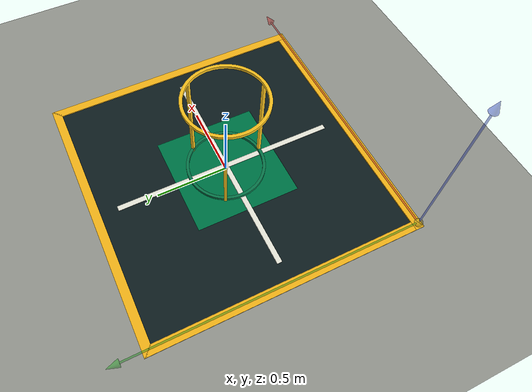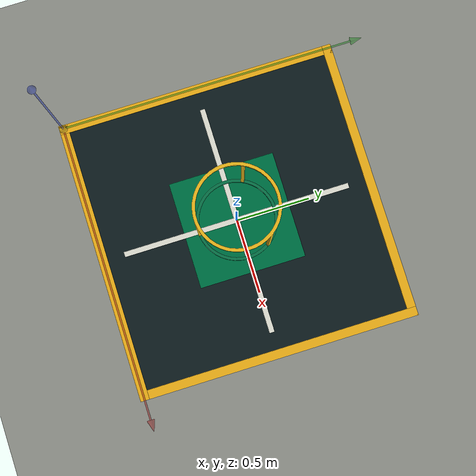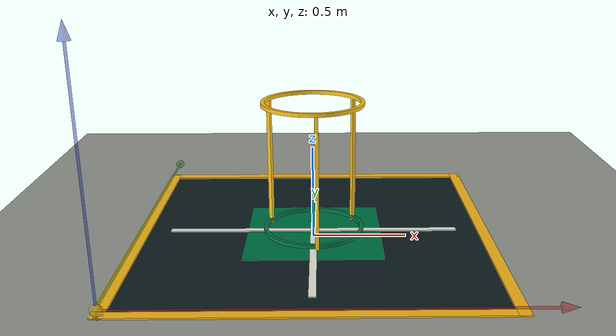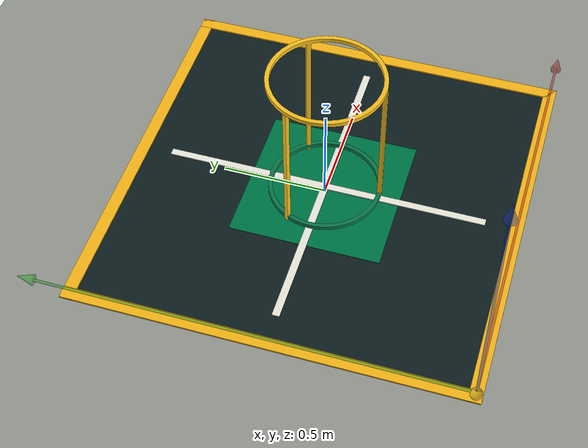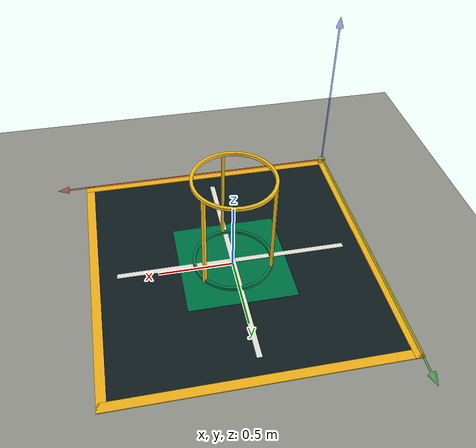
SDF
<sdf version="1.9">
 <world name="laboratory_landingbox_hitl">
  <model name="debug_world_axes">
   <static>true</static>
   <pose>-0.92 -0.92 0 0 0 0</pose>
   <link name="axes_link">
    <visual name="origin_dot">
     <pose>0 0 0.055 0 0 0</pose>
     <geometry><sphere><radius>0.028</radius></sphere></geometry>
     <material>
      <ambient>0.75 0.65 0.15 0.55</ambient>
      <diffuse>0.75 0.65 0.15 0.55</diffuse>
      <emissive>0.08 0.06 0.00 1</emissive>
     </material>
     <transparency>0.10</transparency>
     <cast_shadows>false</cast_shadows>
    </visual>
    <visual name="x_axis_red_line">
     <pose>1.00 0 0.055 0 1.5708 0</pose>
     <geometry><cylinder><radius>0.006</radius><length>2.00</length></cylinder></geometry>
     <material>
      <ambient>0.75 0.10 0.10 0.45</ambient>
      <diffuse>0.75 0.10 0.10 0.45</diffuse>
      <emissive>0.04 0.00 0.00 1</emissive>
     </material>
     <transparency>0.10</transparency>
     <cast_shadows>false</cast_shadows>
    </visual>
    <visual name="x_axis_tip">
     <pose>2.04 0 0.055 0 1.5708 0</pose>
     <geometry><cone><radius>0.026</radius><length>0.08</length></cone></geometry>
     <material>
      <ambient>0.75 0.10 0.10 0.45</ambient>
      <diffuse>0.75 0.10 0.10 0.45</diffuse>
      <emissive>0.04 0.00 0.00 1</emissive>
     </material>
     <transparency>0.10</transparency>
     <cast_shadows>false</cast_shadows>
    </visual>
    <visual name="y_axis_green_line">
     <pose>0 1.00 0.065 -1.5708 0 0</pose>
     <geometry><cylinder><radius>0.006</radius><length>2.00</length></cylinder></geometry>
     <material>
      <ambient>0.10 0.65 0.10 0.45</ambient>
      <diffuse>0.10 0.65 0.10 0.45</diffuse>
      <emissive>0.00 0.04 0.00 1</emissive>
     </material>
     <transparency>0.10</transparency>
     <cast_shadows>false</cast_shadows>
    </visual>
    <visual name="y_axis_tip">
     <pose>0 2.04 0.065 -1.5708 0 0</pose>
     <geometry><cone><radius>0.026</radius><length>0.08</length></cone></geometry>
     <material>
      <ambient>0.10 0.65 0.10 0.45</ambient>
      <diffuse>0.10 0.65 0.10 0.45</diffuse>
      <emissive>0.00 0.04 0.00 1</emissive>
     </material>
     <transparency>0.10</transparency>
     <cast_shadows>false</cast_shadows>
    </visual>
    <visual name="z_axis_blue_line">
     <pose>0 0 0.60 0 0 0</pose>
     <geometry><cylinder><radius>0.006</radius><length>1.20</length></cylinder></geometry>
     <material>
      <ambient>0.10 0.20 0.80 0.45</ambient>
      <diffuse>0.10 0.20 0.80 0.45</diffuse>
      <emissive>0.00 0.00 0.05 1</emissive>
     </material>
     <transparency>0.10</transparency>
     <cast_shadows>false</cast_shadows>
    </visual>
    <visual name="z_axis_tip">
     <pose>0 0 1.24 0 0 0</pose>
     <geometry><cone><radius>0.026</radius><length>0.08</length></cone></geometry>
     <material>
      <ambient>0.10 0.20 0.80 0.45</ambient>
      <diffuse>0.10 0.20 0.80 0.45</diffuse>
      <emissive>0.00 0.00 0.05 1</emissive>
     </material>
     <transparency>0.10</transparency>
     <cast_shadows>false</cast_shadows>
    </visual>
   </link>
  </model>
  <model name="ground_plane">
   <static>true</static>
   <link name="link">
    <collision name="collision">
     <geometry><plane><normal>0 0 1</normal><size>500 500</size></plane></geometry>
     <surface><friction><ode><mu>100</mu><mu2>50</mu2></ode></friction></surface>
    </collision>
    <visual name="visual">
     <geometry><plane><normal>0 0 1</normal><size>500 500</size></plane></geometry>
     <material>
      <ambient>0.74 0.74 0.70 1</ambient>
      <diffuse>0.74 0.74 0.70 1</diffuse>
      <specular>0.05 0.05 0.05 1</specular>
     </material>
    </visual>
    <inertial>
     <mass>1</mass>
     <inertia><ixx>1</ixx><ixy>0</ixy><ixz>0</ixz><iyy>1</iyy><iyz>0</iyz><izz>1</izz></inertia>
    </inertial>
   </link>
  </model>
  <model name="Floor_room">
   <link name="main">
    <pose>0 0 0.01 0 -0 0</pose>
    <collision name="main_Collision"><geometry><box><size>20 20 0.001</size></box></geometry></collision>
    <visual name="main_Visual">
     <geometry><box><size>20 20 0.001</size></box></geometry>
     <material>
      <ambient>0.56 0.58 0.56 1</ambient>
      <diffuse>0.60 0.61 0.58 1</diffuse>
      <specular>0.02 0.02 0.02 1</specular>
     </material>
    </visual>
   </link>
   <static>true</static>
   <pose>0.043797 -0.01325 0 0 -0 0</pose>
  </model>
  <model name="Landing box">
   <static>true</static>
   <link name="base_link">
    <inertial>
     <pose>0 0.003044 0.366956 0 -0 0</pose>
     <mass>2.1469</mass>
     <inertia>
      <ixx>0.251683</ixx>
      <ixy>0.00621323</ixy>
      <ixz>-0.015183</ixz>
      <iyy>0.268915</iyy>
      <iyz>-0.00799762</iyz>
      <izz>0.110272</izz>
     </inertia>
    </inertial>
    <collision name="base_link_collision">
     <pose>0 0 0.03 0 -0 0</pose>
     <geometry><cylinder><length>0.02</length><radius>0.26</radius></cylinder></geometry>
    </collision>
    <visual name="base_link_visual">
     <pose>0 0 0.03 0 -0 0</pose>
     <geometry><mesh><scale>1 1 1</scale><uri>model://landing_box/meshes/base_link.dae</uri></mesh></geometry>
     <material>
      <ambient>0.02 0.24 0.16 1</ambient>
      <diffuse>0.03 0.48 0.30 1</diffuse>
      <specular>0.05 0.05 0.05 1</specular>
     </material>
    </visual>
   </link>
   <link name="Link_1">
    <collision name="base_link_fixed_joint_lump__Link_1_collision_1">
     <pose>-0.235167 0.112679 0.37 1.5708 -0 2.61799</pose>
     <geometry><box><size>0.02 0.7 0.02</size></box></geometry>
    </collision>
    <visual name="base_link_fixed_joint_lump__Link_1_visual_1">
     <pose>-0.235167 0.112679 0.02 1.5708 -0 2.61799</pose>
     <geometry><mesh><scale>1 1 1</scale><uri>model://landing_box/meshes/Link_1.dae</uri></mesh></geometry>
     <material>
      <ambient>0.95 0.68 0.10 1</ambient>
      <diffuse>1.00 0.78 0.12 1</diffuse>
      <specular>0.05 0.04 0.02 1</specular>
     </material>
    </visual>
   </link>
   <link name="Link_2">
    <collision name="base_link_fixed_joint_lump__Link_2_collision_2">
     <pose>0.02 -0.26 0.37 -1.5708 -0 -1.5708</pose>
     <geometry><box><size>0.02 0.7 0.02</size></box></geometry>
    </collision>
    <visual name="base_link_fixed_joint_lump__Link_2_visual_2">
     <pose>0.02 -0.26 0.02 -1.5708 -0 -1.5708</pose>
     <geometry><mesh><scale>1 1 1</scale><uri>model://landing_box/meshes/Link_2.dae</uri></mesh></geometry>
     <material>
      <ambient>0.95 0.68 0.10 1</ambient>
      <diffuse>1.00 0.78 0.12 1</diffuse>
      <specular>0.05 0.04 0.02 1</specular>
     </material>
    </visual>
   </link>
   <link name="Link_3">
    <collision name="base_link_fixed_joint_lump__Link_3_collision_3">
     <pose>0.215167 0.147321 0.37 1.5708 -0 0.523599</pose>
     <geometry><box><size>0.02 0.7 0.02</size></box></geometry>
    </collision>
    <visual name="base_link_fixed_joint_lump__Link_3_visual_3">
     <pose>0.215167 0.147321 0.02 1.5708 -0 0.523599</pose>
     <geometry><mesh><scale>1 1 1</scale><uri>model://landing_box/meshes/Link_3.dae</uri></mesh></geometry>
     <material>
      <ambient>0.95 0.68 0.10 1</ambient>
      <diffuse>1.00 0.78 0.12 1</diffuse>
      <specular>0.05 0.04 0.02 1</specular>
     </material>
    </visual>
   </link>
   <link name="Link_4">
    <collision name="base_link_fixed_joint_lump__Link_1_collision_4">
     <pose>-0.235167 0.112679 0.73 1.5708 -0 2.61799</pose>
     <geometry><box><size>0.02 0.02 0.3</size></box></geometry>
    </collision>
   </link>
   <link name="Link_5">
    <collision name="base_link_fixed_joint_lump__Link_2_collision_5">
     <pose>0.02 -0.26 0.73 -1.5708 -0 -1.5708</pose>
     <geometry><box><size>0.02 0.02 0.3</size></box></geometry>
    </collision>
   </link>
   <link name="Link_6">
    <collision name="base_link_fixed_joint_lump__Link_3_collision_6">
     <pose>0.215167 0.147321 0.73 1.5708 -0 0.523599</pose>
     <geometry><box><size>0.02 0.02 0.3</size></box></geometry>
    </collision>
   </link>
   <link name="Link_7">
    <collision name="base_link_fixed_joint_lump__Link_1_collision_7">
     <pose>0.235167 -0.112679 0.73 1.5708 -0 2.61799</pose>
     <geometry><box><size>0.02 0.02 0.3</size></box></geometry>
    </collision>
   </link>
   <link name="Link_8">
    <collision name="base_link_fixed_joint_lump__Link_2_collision_8">
     <pose>-0.02 0.26 0.73 -1.5708 -0 -1.5708</pose>
     <geometry><box><size>0.02 0.02 0.3</size></box></geometry>
    </collision>
   </link>
   <link name="Link_9">
    <collision name="base_link_fixed_joint_lump__Link_3_collision_9">
     <pose>-0.215167 -0.147321 0.73 1.5708 -0 0.523599</pose>
     <geometry><box><size>0.02 0.02 0.3</size></box></geometry>
    </collision>
   </link>
   <pose>0 0 0.012 0 0 0</pose>
  </model>
  <model name="landing_zone_mat">
   <static>true</static>
   <pose>0 0 0.018 0 0 0</pose>
   <link name="link">
    <visual name="visual">
     <geometry><box><size>1.80 1.80 0.006</size></box></geometry>
     <material>
      <ambient>0.05 0.09 0.10 1</ambient>
      <diffuse>0.06 0.12 0.13 1</diffuse>
      <specular>0.02 0.02 0.02 1</specular>
     </material>
     <transparency>0.10</transparency>
     <cast_shadows>false</cast_shadows>
    </visual>
   </link>
  </model>
  <model name="landing_zone_center">
   <static>true</static>
   <pose>0 0 0.024 0 0 0</pose>
   <link name="link">
    <visual name="visual">
     <geometry><box><size>0.72 0.72 0.004</size></box></geometry>
     <material>
      <ambient>0.00 0.35 0.22 1</ambient>
      <diffuse>0.00 0.60 0.36 1</diffuse>
      <specular>0.02 0.02 0.02 1</specular>
     </material>
     <transparency>0.18</transparency>
     <cast_shadows>false</cast_shadows>
    </visual>
   </link>
  </model>
  <model name="landing_zone_border_n">
   <static>true</static>
   <pose>0 0.92 0.03 0 0 0</pose>
   <link name="link">
    <visual name="visual">
     <geometry><box><size>1.90 0.06 0.008</size></box></geometry>
     <material>
      <ambient>1.00 0.74 0.10 1</ambient>
      <diffuse>1.00 0.74 0.10 1</diffuse>
      <specular>0.02 0.02 0.02 1</specular>
     </material>
     <cast_shadows>false</cast_shadows>
    </visual>
   </link>
  </model>
  <model name="landing_zone_border_s">
   <static>true</static>
   <pose>0 -0.92 0.03 0 0 0</pose>
   <link name="link">
    <visual name="visual">
     <geometry><box><size>1.90 0.06 0.008</size></box></geometry>
     <material>
      <ambient>1.00 0.74 0.10 1</ambient>
      <diffuse>1.00 0.74 0.10 1</diffuse>
      <specular>0.02 0.02 0.02 1</specular>
     </material>
     <cast_shadows>false</cast_shadows>
    </visual>
   </link>
  </model>
  <model name="landing_zone_border_e">
   <static>true</static>
   <pose>0.92 0 0.03 0 0 0</pose>
   <link name="link">
    <visual name="visual">
     <geometry><box><size>0.06 1.90 0.008</size></box></geometry>
     <material>
      <ambient>1.00 0.74 0.10 1</ambient>
      <diffuse>1.00 0.74 0.10 1</diffuse>
      <specular>0.02 0.02 0.02 1</specular>
     </material>
     <cast_shadows>false</cast_shadows>
    </visual>
   </link>
  </model>
  <model name="landing_zone_border_w">
   <static>true</static>
   <pose>-0.92 0 0.03 0 0 0</pose>
   <link name="link">
    <visual name="visual">
     <geometry><box><size>0.06 1.90 0.008</size></box></geometry>
     <material>
      <ambient>1.00 0.74 0.10 1</ambient>
      <diffuse>1.00 0.74 0.10 1</diffuse>
      <specular>0.02 0.02 0.02 1</specular>
     </material>
     <cast_shadows>false</cast_shadows>
    </visual>
   </link>
  </model>
  <model name="clearance_mark_x">
   <static>true</static>
   <pose>0 0 0.034 0 0 0</pose>
   <link name="link">
    <visual name="visual">
     <geometry><box><size>1.55 0.035 0.006</size></box></geometry>
     <material>
      <ambient>0.95 0.95 0.90 1</ambient>
      <diffuse>0.95 0.95 0.90 1</diffuse>
      <specular>0.02 0.02 0.02 1</specular>
     </material>
     <transparency>0.05</transparency>
     <cast_shadows>false</cast_shadows>
    </visual>
   </link>
  </model>
  <model name="clearance_mark_y">
   <static>true</static>
   <pose>0 0 0.035 0 0 0</pose>
   <link name="link">
    <visual name="visual">
     <geometry><box><size>0.035 1.55 0.006</size></box></geometry>
     <material>
      <ambient>0.95 0.95 0.90 1</ambient>
      <diffuse>0.95 0.95 0.90 1</diffuse>
      <specular>0.02 0.02 0.02 1</specular>
     </material>
     <transparency>0.05</transparency>
     <cast_shadows>false</cast_shadows>
    </visual>
   </link>
  </model>
 </world>
</sdf>
